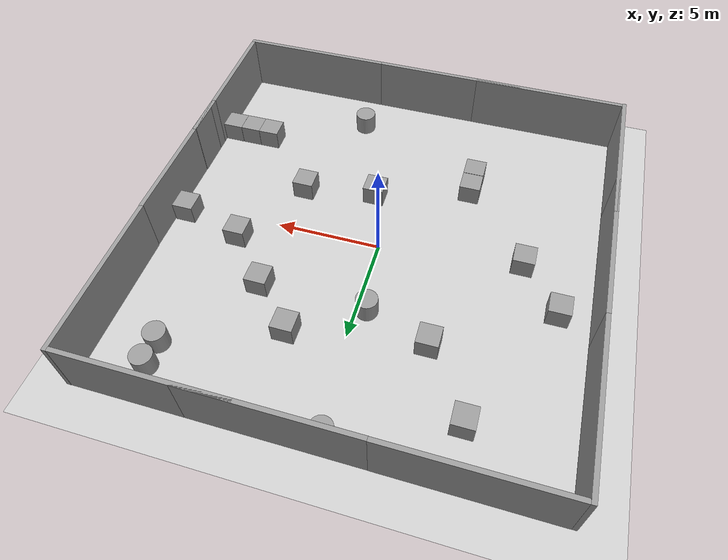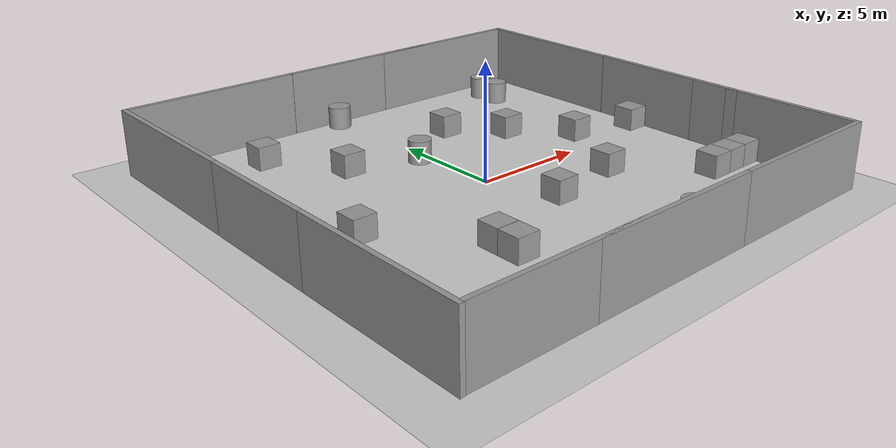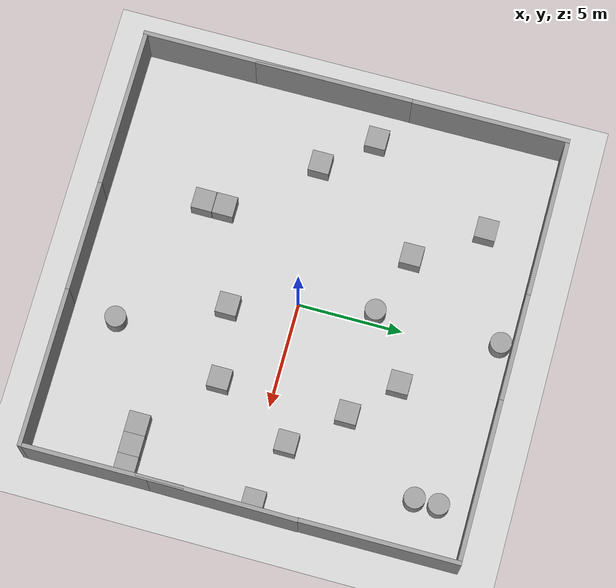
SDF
<sdf version="1.6">
 <world name="default">
  <light name="sun" type="directional">
   <pose>0 0 10 0 -0 0</pose>
   <diffuse>0.8 0.8 0.8 1</diffuse>
   <specular>0.1 0.1 0.1 1</specular>
   <attenuation>
    <range>1000</range>
    <constant>0.9</constant>
    <linear>0.01</linear>
    <quadratic>0.001</quadratic>
   </attenuation>
   <direction>-0.5 0.5 -1</direction>
  </light>
  <model name="ground_plane">
   <static>1</static>
   <link name="link">
    <collision name="collision">
     <geometry><plane><normal>0 0 1</normal><size>100 100</size></plane></geometry>
     <surface><friction><ode><mu>100</mu><mu2>50</mu2></ode></friction></surface>
    </collision>
    <visual name="visual">
     <cast_shadows>0</cast_shadows>
     <geometry><plane><normal>0 0 1</normal><size>100 100</size></plane></geometry>
     <material>
      <script><uri>file://media/materials/scripts/gazebo.material</uri><name>Gazebo/Grey</name></script>
     </material>
    </visual>
   </link>
  </model>
  <gravity>0 0 -9.8</gravity>
  <magnetic_field>6e-06 2.3e-05 -4.2e-05</magnetic_field>
  <atmosphere type="adiabatic"/>
  <physics name="default_physics" default="0" type="ode">
   <max_step_size>0.001</max_step_size>
   <real_time_factor>1</real_time_factor>
   <real_time_update_rate>1000</real_time_update_rate>
  </physics>
  <scene><ambient>0.4 0.4 0.4 1</ambient><background>0.7 0.7 0.7 1</background><shadows>1</shadows></scene>
  <spherical_coordinates>
   <surface_model>EARTH_WGS84</surface_model>
   <latitude_deg>0</latitude_deg>
   <longitude_deg>0</longitude_deg>
   <elevation>0</elevation>
   <heading_deg>0</heading_deg>
  </spherical_coordinates>
  <model name="unit_box_0">
   <pose>-3.49512 -5.50863 0.499995 1e-05 -0 0</pose>
   <link name="link">
    <inertial>
     <mass>1</mass>
     <inertia>
      <ixx>0.166667</ixx>
      <ixy>0</ixy>
      <ixz>0</ixz>
      <iyy>0.166667</iyy>
      <iyz>0</iyz>
      <izz>0.166667</izz>
     </inertia>
    </inertial>
    <collision name="collision"><geometry><box><size>1 1 1</size></box></geometry></collision>
    <visual name="visual">
     <geometry><box><size>1 1 1</size></box></geometry>
     <material>
      <script><name>Gazebo/Grey</name><uri>file://media/materials/scripts/gazebo.material</uri></script>
     </material>
    </visual>
   </link>
  </model>
  <model name="unit_box_1">
   <pose>-3.4992 -4.49184 0.499995 0 -1e-05 0</pose>
   <link name="link">
    <inertial>
     <mass>1</mass>
     <inertia>
      <ixx>0.166667</ixx>
      <ixy>0</ixy>
      <ixz>0</ixz>
      <iyy>0.166667</iyy>
      <iyz>0</iyz>
      <izz>0.166667</izz>
     </inertia>
    </inertial>
    <collision name="collision"><geometry><box><size>1 1 1</size></box></geometry></collision>
    <visual name="visual">
     <geometry><box><size>1 1 1</size></box></geometry>
     <material>
      <script><name>Gazebo/Grey</name><uri>file://media/materials/scripts/gazebo.material</uri></script>
     </material>
    </visual>
   </link>
  </model>
  <model name="unit_box_2">
   <pose>-3.47105 4.50781 0.499995 1e-05 -0 0</pose>
   <link name="link">
    <inertial>
     <mass>1</mass>
     <inertia>
      <ixx>0.166667</ixx>
      <ixy>0</ixy>
      <ixz>0</ixz>
      <iyy>0.166667</iyy>
      <iyz>0</iyz>
      <izz>0.166667</izz>
     </inertia>
    </inertial>
    <collision name="collision"><geometry><box><size>1 1 1</size></box></geometry></collision>
    <visual name="visual">
     <geometry><box><size>1 1 1</size></box></geometry>
     <material>
      <script><name>Gazebo/Grey</name><uri>file://media/materials/scripts/gazebo.material</uri></script>
     </material>
    </visual>
   </link>
  </model>
  <model name="unit_box_3">
   <pose>2.52609 5.48524 0.499995 0 -1e-05 0</pose>
   <link name="link">
    <inertial>
     <mass>1</mass>
     <inertia>
      <ixx>0.166667</ixx>
      <ixy>0</ixy>
      <ixz>0</ixz>
      <iyy>0.166667</iyy>
      <iyz>0</iyz>
      <izz>0.166667</izz>
     </inertia>
    </inertial>
    <collision name="collision"><geometry><box><size>1 1 1</size></box></geometry></collision>
    <visual name="visual">
     <geometry><box><size>1 1 1</size></box></geometry>
     <material>
      <script><name>Gazebo/Grey</name><uri>file://media/materials/scripts/gazebo.material</uri></script>
     </material>
    </visual>
   </link>
  </model>
  <model name="unit_box_4">
   <pose>4.48466 -2.50056 0.499995 1e-05 -0 0</pose>
   <link name="link">
    <inertial>
     <mass>1</mass>
     <inertia>
      <ixx>0.166667</ixx>
      <ixy>0</ixy>
      <ixz>0</ixz>
      <iyy>0.166667</iyy>
      <iyz>0</iyz>
      <izz>0.166667</izz>
     </inertia>
    </inertial>
    <collision name="collision"><geometry><box><size>1 1 1</size></box></geometry></collision>
    <visual name="visual">
     <geometry><box><size>1 1 1</size></box></geometry>
     <material>
      <script><name>Gazebo/Grey</name><uri>file://media/materials/scripts/gazebo.material</uri></script>
     </material>
    </visual>
   </link>
  </model>
  <model name="unit_cylinder_0">
   <pose>-0.496373 3.55096 0.499994 -3e-06 -1e-06 -0</pose>
   <link name="link">
    <inertial>
     <mass>1</mass>
     <inertia><ixx>0.145833</ixx><ixy>0</ixy><ixz>0</ixz><iyy>0.145833</iyy><iyz>0</iyz><izz>0.125</izz></inertia>
    </inertial>
    <collision name="collision">
     <geometry><cylinder><radius>0.5</radius><length>1</length></cylinder></geometry>
    </collision>
    <visual name="visual">
     <geometry><cylinder><radius>0.5</radius><length>1</length></cylinder></geometry>
     <material>
      <script><name>Gazebo/Grey</name><uri>file://media/materials/scripts/gazebo.material</uri></script>
     </material>
    </visual>
   </link>
  </model>
  <model name="unit_cylinder_1">
   <pose>2.96969 -7.90013 0.499996 -3e-06 1e-06 0</pose>
   <link name="link">
    <inertial>
     <mass>1</mass>
     <inertia><ixx>0.145833</ixx><ixy>0</ixy><ixz>0</ixz><iyy>0.145833</iyy><iyz>0</iyz><izz>0.125</izz></inertia>
    </inertial>
    <collision name="collision">
     <geometry><cylinder><radius>0.5</radius><length>1</length></cylinder></geometry>
    </collision>
    <visual name="visual">
     <geometry><cylinder><radius>0.5</radius><length>1</length></cylinder></geometry>
     <material>
      <script><name>Gazebo/Grey</name><uri>file://media/materials/scripts/gazebo.material</uri></script>
     </material>
    </visual>
   </link>
  </model>
  <model name="unit_box_5">
   <pose>7.50884 -5.52235 0.499995 0 1e-05 0.003841</pose>
   <link name="link">
    <inertial>
     <mass>1</mass>
     <inertia>
      <ixx>0.166667</ixx>
      <ixy>0</ixy>
      <ixz>0</ixz>
      <iyy>0.166667</iyy>
      <iyz>0</iyz>
      <izz>0.166667</izz>
     </inertia>
    </inertial>
    <collision name="collision"><geometry><box><size>1 1 1</size></box></geometry></collision>
    <visual name="visual">
     <geometry><box><size>1 1 1</size></box></geometry>
     <material>
      <script><name>Gazebo/Grey</name><uri>file://media/materials/scripts/gazebo.material</uri></script>
     </material>
    </visual>
   </link>
  </model>
  <model name="unit_box_6">
   <pose>8.50883 -5.51528 0.499995 0 1e-05 0.003843</pose>
   <link name="link">
    <inertial>
     <mass>1</mass>
     <inertia>
      <ixx>0.166667</ixx>
      <ixy>0</ixy>
      <ixz>0</ixz>
      <iyy>0.166667</iyy>
      <iyz>0</iyz>
      <izz>0.166667</izz>
     </inertia>
    </inertial>
    <collision name="collision"><geometry><box><size>1 1 1</size></box></geometry></collision>
    <visual name="visual">
     <geometry><box><size>1 1 1</size></box></geometry>
     <material>
      <script><name>Gazebo/Grey</name><uri>file://media/materials/scripts/gazebo.material</uri></script>
     </material>
    </visual>
   </link>
  </model>
  <model name="unit_box_7">
   <pose>9.50898 -5.50827 0.499995 0 1e-05 0.003547</pose>
   <link name="link">
    <inertial>
     <mass>1</mass>
     <inertia>
      <ixx>0.166667</ixx>
      <ixy>0</ixy>
      <ixz>0</ixz>
      <iyy>0.166667</iyy>
      <iyz>0</iyz>
      <izz>0.166667</izz>
     </inertia>
    </inertial>
    <collision name="collision"><geometry><box><size>1 1 1</size></box></geometry></collision>
    <visual name="visual">
     <geometry><box><size>1 1 1</size></box></geometry>
     <material>
      <script><name>Gazebo/Grey</name><uri>file://media/materials/scripts/gazebo.material</uri></script>
     </material>
    </visual>
   </link>
  </model>
  <model name="unit_cylinder_2">
   <pose>7.50387 7.4816 0.499997 2e-06 1e-06 0</pose>
   <link name="link">
    <inertial>
     <mass>1</mass>
     <inertia><ixx>0.145833</ixx><ixy>0</ixy><ixz>0</ixz><iyy>0.145833</iyy><iyz>0</iyz><izz>0.125</izz></inertia>
    </inertial>
    <collision name="collision">
     <geometry><cylinder><radius>0.5</radius><length>1</length></cylinder></geometry>
    </collision>
    <visual name="visual">
     <geometry><cylinder><radius>0.5</radius><length>1</length></cylinder></geometry>
     <material>
      <script><name>Gazebo/Grey</name><uri>file://media/materials/scripts/gazebo.material</uri></script>
     </material>
    </visual>
   </link>
  </model>
  <model name="unit_cylinder_3">
   <pose>7.49424 8.60702 0.499996 -3e-06 1e-06 0</pose>
   <link name="link">
    <inertial>
     <mass>1</mass>
     <inertia><ixx>0.145833</ixx><ixy>0</ixy><ixz>0</ixz><iyy>0.145833</iyy><iyz>0</iyz><izz>0.125</izz></inertia>
    </inertial>
    <collision name="collision">
     <geometry><cylinder><radius>0.5</radius><length>1</length></cylinder></geometry>
    </collision>
    <visual name="visual">
     <geometry><cylinder><radius>0.5</radius><length>1</length></cylinder></geometry>
     <material>
      <script><name>Gazebo/Grey</name><uri>file://media/materials/scripts/gazebo.material</uri></script>
     </material>
    </visual>
   </link>
  </model>
  <model name="unit_box_8">
   <pose>9.50412 0.496961 0.499995 0 -1e-05 0</pose>
   <link name="link">
    <inertial>
     <mass>1</mass>
     <inertia>
      <ixx>0.166667</ixx>
      <ixy>0</ixy>
      <ixz>0</ixz>
      <iyy>0.166667</iyy>
      <iyz>0</iyz>
      <izz>0.166667</izz>
     </inertia>
    </inertial>
    <collision name="collision"><geometry><box><size>1 1 1</size></box></geometry></collision>
    <visual name="visual">
     <geometry><box><size>1 1 1</size></box></geometry>
     <material>
      <script><name>Gazebo/Grey</name><uri>file://media/materials/scripts/gazebo.material</uri></script>
     </material>
    </visual>
   </link>
  </model>
  <model name="unit_box_9">
   <pose>-8.5328 1.50675 0.499995 1e-05 -0 0</pose>
   <link name="link">
    <inertial>
     <mass>1</mass>
     <inertia>
      <ixx>0.166667</ixx>
      <ixy>0</ixy>
      <ixz>0</ixz>
      <iyy>0.166667</iyy>
      <iyz>0</iyz>
      <izz>0.166667</izz>
     </inertia>
    </inertial>
    <collision name="collision"><geometry><box><size>1 1 1</size></box></geometry></collision>
    <visual name="visual">
     <geometry><box><size>1 1 1</size></box></geometry>
     <material>
      <script><name>Gazebo/Grey</name><uri>file://media/materials/scripts/gazebo.material</uri></script>
     </material>
    </visual>
   </link>
  </model>
  <model name="unit_cylinder_4">
   <pose>-0.490447 9.49462 0.499994 -4e-06 -4e-06 -0</pose>
   <link name="link">
    <inertial>
     <mass>1</mass>
     <inertia><ixx>0.145833</ixx><ixy>0</ixy><ixz>0</ixz><iyy>0.145833</iyy><iyz>0</iyz><izz>0.125</izz></inertia>
    </inertial>
    <collision name="collision">
     <geometry><cylinder><radius>0.5</radius><length>1</length></cylinder></geometry>
    </collision>
    <visual name="visual">
     <geometry><cylinder><radius>0.5</radius><length>1</length></cylinder></geometry>
     <material>
      <script><name>Gazebo/Grey</name><uri>file://media/materials/scripts/gazebo.material</uri></script>
     </material>
    </visual>
   </link>
  </model>
  <model name="unit_box_10">
   <pose>4.50091 3.55915 0.499995 0 -1e-05 0</pose>
   <link name="link">
    <inertial>
     <mass>1</mass>
     <inertia>
      <ixx>0.166667</ixx>
      <ixy>0</ixy>
      <ixz>0</ixz>
      <iyy>0.166667</iyy>
      <iyz>0</iyz>
      <izz>0.166667</izz>
     </inertia>
    </inertial>
    <collision name="collision"><geometry><box><size>1 1 1</size></box></geometry></collision>
    <visual name="visual">
     <geometry><box><size>1 1 1</size></box></geometry>
     <material>
      <script><name>Gazebo/Grey</name><uri>file://media/materials/scripts/gazebo.material</uri></script>
     </material>
    </visual>
   </link>
  </model>
  <model name="unit_box_11">
   <pose>6.54178 1.24612 0.499995 1e-05 -0 0</pose>
   <link name="link">
    <inertial>
     <mass>1</mass>
     <inertia>
      <ixx>0.166667</ixx>
      <ixy>0</ixy>
      <ixz>0</ixz>
      <iyy>0.166667</iyy>
      <iyz>0</iyz>
      <izz>0.166667</izz>
     </inertia>
    </inertial>
    <collision name="collision"><geometry><box><size>1 1 1</size></box></geometry></collision>
    <visual name="visual">
     <geometry><box><size>1 1 1</size></box></geometry>
     <material>
      <script><name>Gazebo/Grey</name><uri>file://media/materials/scripts/gazebo.material</uri></script>
     </material>
    </visual>
   </link>
  </model>
  <model name="unit_box_12">
   <pose>1.03007 -3.07283 0.499995 -1e-05 0 0</pose>
   <link name="link">
    <inertial>
     <mass>1</mass>
     <inertia>
      <ixx>0.166667</ixx>
      <ixy>0</ixy>
      <ixz>0</ixz>
      <iyy>0.166667</iyy>
      <iyz>0</iyz>
      <izz>0.166667</izz>
     </inertia>
    </inertial>
    <collision name="collision"><geometry><box><size>1 1 1</size></box></geometry></collision>
    <visual name="visual">
     <geometry><box><size>1 1 1</size></box></geometry>
     <material>
      <script><name>Gazebo/Grey</name><uri>file://media/materials/scripts/gazebo.material</uri></script>
     </material>
    </visual>
   </link>
  </model>
  <model name="unit_box_13">
   <pose>-6.68761 -0.736036 0.499995 0 -1e-05 0</pose>
   <link name="link">
    <inertial>
     <mass>1</mass>
     <inertia>
      <ixx>0.166667</ixx>
      <ixy>0</ixy>
      <ixz>0</ixz>
      <iyy>0.166667</iyy>
      <iyz>0</iyz>
      <izz>0.166667</izz>
     </inertia>
    </inertial>
    <collision name="collision"><geometry><box><size>1 1 1</size></box></geometry></collision>
    <visual name="visual">
     <geometry><box><size>1 1 1</size></box></geometry>
     <material>
      <script><name>Gazebo/Grey</name><uri>file://media/materials/scripts/gazebo.material</uri></script>
     </material>
    </visual>
   </link>
  </model>
  <model name="unit_box_14">
   <pose>-5.58238 7.54264 0.499995 -1e-05 0 0</pose>
   <link name="link">
    <inertial>
     <mass>1</mass>
     <inertia>
      <ixx>0.166667</ixx>
      <ixy>0</ixy>
      <ixz>0</ixz>
      <iyy>0.166667</iyy>
      <iyz>0</iyz>
      <izz>0.166667</izz>
     </inertia>
    </inertial>
    <collision name="collision"><geometry><box><size>1 1 1</size></box></geometry></collision>
    <visual name="visual">
     <geometry><box><size>1 1 1</size></box></geometry>
     <material>
      <script><name>Gazebo/Grey</name><uri>file://media/materials/scripts/gazebo.material</uri></script>
     </material>
    </visual>
   </link>
  </model>
  <model name="grey_wall">
   <static>1</static>
   <link name="link">
    <pose>0 0 1.4 0 -0 0</pose>
    <collision name="collision"><geometry><box><size>7.5 0.2 2.8</size></box></geometry></collision>
    <visual name="visual">
     <cast_shadows>0</cast_shadows>
     <geometry><box><size>7.5 0.2 2.8</size></box></geometry>
     <material>
      <script>
       <uri>model://grey_wall/materials/scripts</uri>
       <uri>model://grey_wall/materials/textures</uri>
       <name>vrc/grey_wall</name>
      </script>
     </material>
    </visual>
   </link>
   <pose>-6.25724 10.1174 0 0 -0 0</pose>
  </model>
  <model name="grey_wall_0">
   <static>1</static>
   <link name="link">
    <pose>0 0 1.4 0 -0 0</pose>
    <collision name="collision"><geometry><box><size>7.5 0.2 2.8</size></box></geometry></collision>
    <visual name="visual">
     <cast_shadows>0</cast_shadows>
     <geometry><box><size>7.5 0.2 2.8</size></box></geometry>
     <material>
      <script>
       <uri>model://grey_wall/materials/scripts</uri>
       <uri>model://grey_wall/materials/textures</uri>
       <name>vrc/grey_wall</name>
      </script>
     </material>
    </visual>
   </link>
   <pose>1.22625 10.112 0 0 -0 0</pose>
  </model>
  <model name="grey_wall_1">
   <static>1</static>
   <link name="link">
    <pose>0 0 1.4 0 -0 0</pose>
    <collision name="collision"><geometry><box><size>7.5 0.2 2.8</size></box></geometry></collision>
    <visual name="visual">
     <cast_shadows>0</cast_shadows>
     <geometry><box><size>7.5 0.2 2.8</size></box></geometry>
     <material>
      <script>
       <uri>model://grey_wall/materials/scripts</uri>
       <uri>model://grey_wall/materials/textures</uri>
       <name>vrc/grey_wall</name>
      </script>
     </material>
    </visual>
   </link>
   <pose>6.26734 10.1117 0 0 -0 0</pose>
  </model>
  <model name="grey_wall_2">
   <static>1</static>
   <link name="link">
    <pose>0 0 1.4 0 -0 0</pose>
    <collision name="collision"><geometry><box><size>7.5 0.2 2.8</size></box></geometry></collision>
    <visual name="visual">
     <cast_shadows>0</cast_shadows>
     <geometry><box><size>7.5 0.2 2.8</size></box></geometry>
     <material>
      <script>
       <uri>model://grey_wall/materials/scripts</uri>
       <uri>model://grey_wall/materials/textures</uri>
       <name>vrc/grey_wall</name>
      </script>
     </material>
    </visual>
   </link>
   <pose>10.1193 6.46701 0 0 0 -1.56733</pose>
  </model>
  <model name="grey_wall_2_clone">
   <static>1</static>
   <link name="link">
    <pose>0 0 1.4 0 -0 0</pose>
    <collision name="collision"><geometry><box><size>7.5 0.2 2.8</size></box></geometry></collision>
    <visual name="visual">
     <cast_shadows>0</cast_shadows>
     <geometry><box><size>7.5 0.2 2.8</size></box></geometry>
     <material>
      <script>
       <uri>model://grey_wall/materials/scripts</uri>
       <uri>model://grey_wall/materials/textures</uri>
       <name>vrc/grey_wall</name>
      </script>
     </material>
    </visual>
   </link>
   <pose>10.1258 -0.989664 0 0 0 -1.57745</pose>
  </model>
  <model name="grey_wall_2_clone_0">
   <static>1</static>
   <link name="link">
    <pose>0 0 1.4 0 -0 0</pose>
    <collision name="collision"><geometry><box><size>7.5 0.2 2.8</size></box></geometry></collision>
    <visual name="visual">
     <cast_shadows>0</cast_shadows>
     <geometry><box><size>7.5 0.2 2.8</size></box></geometry>
     <material>
      <script>
       <uri>model://grey_wall/materials/scripts</uri>
       <uri>model://grey_wall/materials/textures</uri>
       <name>vrc/grey_wall</name>
      </script>
     </material>
    </visual>
   </link>
   <pose>10.1116 -6.24607 0 0 0 -1.56733</pose>
  </model>
  <model name="grey_wall_3">
   <static>1</static>
   <link name="link">
    <pose>0 0 1.4 0 -0 0</pose>
    <collision name="collision"><geometry><box><size>7.5 0.2 2.8</size></box></geometry></collision>
    <visual name="visual">
     <cast_shadows>0</cast_shadows>
     <geometry><box><size>7.5 0.2 2.8</size></box></geometry>
     <material>
      <script>
       <uri>model://grey_wall/materials/scripts</uri>
       <uri>model://grey_wall/materials/textures</uri>
       <name>vrc/grey_wall</name>
      </script>
     </material>
    </visual>
   </link>
   <pose>6.46114 -10.1013 0 0 -0 0</pose>
  </model>
  <model name="grey_wall_4">
   <static>1</static>
   <link name="link">
    <pose>0 0 1.4 0 -0 0</pose>
    <collision name="collision"><geometry><box><size>7.5 0.2 2.8</size></box></geometry></collision>
    <visual name="visual">
     <cast_shadows>0</cast_shadows>
     <geometry><box><size>7.5 0.2 2.8</size></box></geometry>
     <material>
      <script>
       <uri>model://grey_wall/materials/scripts</uri>
       <uri>model://grey_wall/materials/textures</uri>
       <name>vrc/grey_wall</name>
      </script>
     </material>
    </visual>
   </link>
   <pose>-1.02707 -10.1049 0 0 -0 0</pose>
  </model>
  <model name="grey_wall_5">
   <static>1</static>
   <link name="link">
    <pose>0 0 1.4 0 -0 0</pose>
    <collision name="collision"><geometry><box><size>7.5 0.2 2.8</size></box></geometry></collision>
    <visual name="visual">
     <cast_shadows>0</cast_shadows>
     <geometry><box><size>7.5 0.2 2.8</size></box></geometry>
     <material>
      <script>
       <uri>model://grey_wall/materials/scripts</uri>
       <uri>model://grey_wall/materials/textures</uri>
       <name>vrc/grey_wall</name>
      </script>
     </material>
    </visual>
   </link>
   <pose>-6.2591 -10.104 0 0 -0 0</pose>
  </model>
  <model name="grey_wall_6">
   <static>1</static>
   <link name="link">
    <pose>0 0 1.4 0 -0 0</pose>
    <collision name="collision"><geometry><box><size>7.5 0.2 2.8</size></box></geometry></collision>
    <visual name="visual">
     <cast_shadows>0</cast_shadows>
     <geometry><box><size>7.5 0.2 2.8</size></box></geometry>
     <material>
      <script>
       <uri>model://grey_wall/materials/scripts</uri>
       <uri>model://grey_wall/materials/textures</uri>
       <name>vrc/grey_wall</name>
      </script>
     </material>
    </visual>
   </link>
   <pose>-10.1056 6.46121 0 0 0 -1.56871</pose>
  </model>
  <model name="grey_wall_6_clone">
   <static>1</static>
   <link name="link">
    <pose>0 0 1.4 0 -0 0</pose>
    <collision name="collision"><geometry><box><size>7.5 0.2 2.8</size></box></geometry></collision>
    <visual name="visual">
     <cast_shadows>0</cast_shadows>
     <geometry><box><size>7.5 0.2 2.8</size></box></geometry>
     <material>
      <script>
       <uri>model://grey_wall/materials/scripts</uri>
       <uri>model://grey_wall/materials/textures</uri>
       <name>vrc/grey_wall</name>
      </script>
     </material>
    </visual>
   </link>
   <pose>-10.0957 -1.0384 0 0 0 -1.56871</pose>
  </model>
  <model name="grey_wall_6_clone_clone">
   <static>1</static>
   <link name="link">
    <pose>0 0 1.4 0 -0 0</pose>
    <collision name="collision"><geometry><box><size>7.5 0.2 2.8</size></box></geometry></collision>
    <visual name="visual">
     <cast_shadows>0</cast_shadows>
     <geometry><box><size>7.5 0.2 2.8</size></box></geometry>
     <material>
      <script>
       <uri>model://grey_wall/materials/scripts</uri>
       <uri>model://grey_wall/materials/textures</uri>
       <name>vrc/grey_wall</name>
      </script>
     </material>
    </visual>
   </link>
   <pose>-10.0857 -6.47946 0 0 0 -1.56871</pose>
  </model>
 </world>
</sdf>
